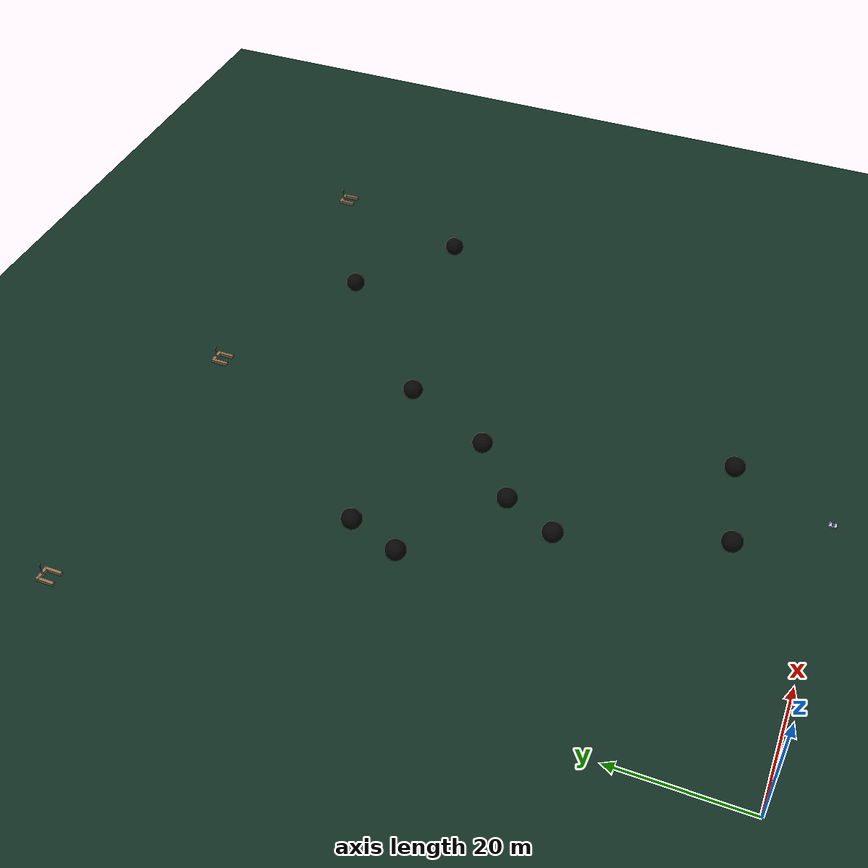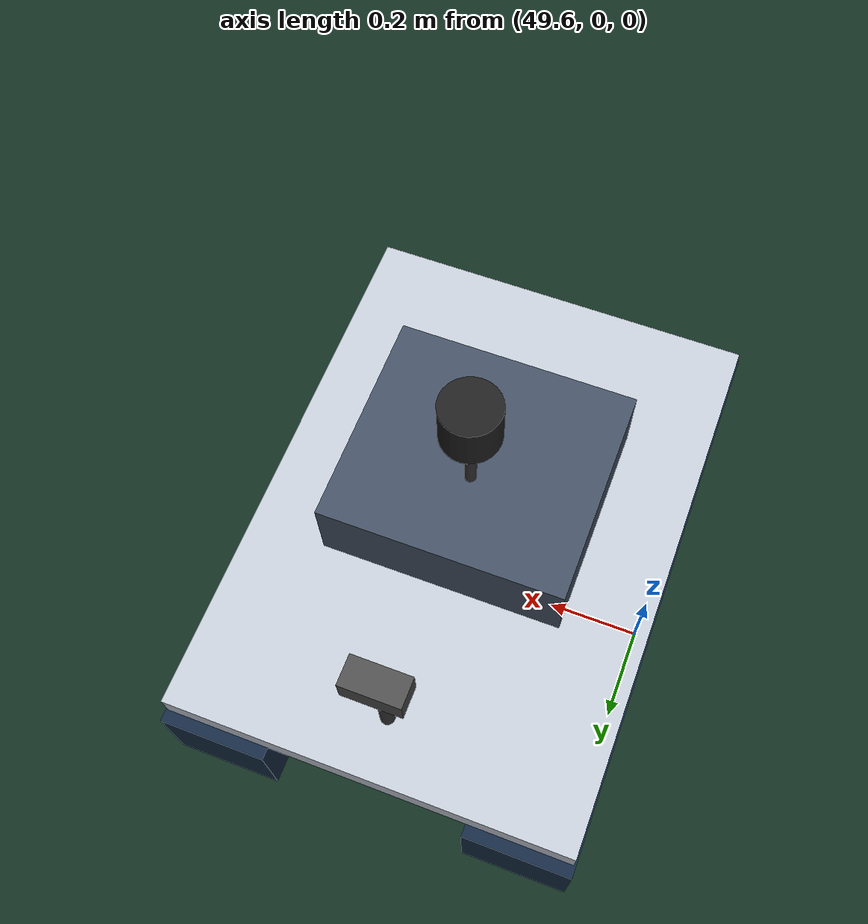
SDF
<sdf version="1.9">
 <world name="plan_world">
  <physics name="4ms" type="dart">
   <max_step_size>0.004</max_step_size>
   <real_time_factor>1.0</real_time_factor>
  </physics>
  <plugin filename="gz-sim-physics-system" name="gz::sim::systems::Physics"/>
  <plugin filename="gz-sim-user-commands-system" name="gz::sim::systems::UserCommands"/>
  <plugin filename="gz-sim-sensors-system" name="gz::sim::systems::Sensors">
   <render_engine>ogre2</render_engine>
   <disable_on_drained_battery>true</disable_on_drained_battery>
  </plugin>
  <plugin filename="gz-sim-imu-system" name="gz::sim::systems::Imu"/>
  <plugin filename="gz-sim-magnetometer-system" name="gz::sim::systems::Magnetometer"/>
  <plugin filename="gz-sim-forcetorque-system" name="gz::sim::systems::ForceTorque"/>
  <plugin filename="gz-sim-particle-emitter2-system" name="gz::sim::systems::ParticleEmitter2"/>
  <plugin filename="gz-sim-scene-broadcaster-system" name="gz::sim::systems::SceneBroadcaster"/>
  <plugin filename="gz-sim-contact-system" name="gz::sim::systems::Contact"/>
  <plugin filename="gz-sim-navsat-system" name="gz::sim::systems::NavSat"/>
  <scene><grid>false</grid><ambient>1.0 1.0 1.0</ambient><background>0.8 0.8 0.8</background></scene>
  <spherical_coordinates>
   <surface_model>EARTH_WGS84</surface_model>
   <world_frame_orientation>ENU</world_frame_orientation>
   <latitude_deg>-33.724223</latitude_deg>
   <longitude_deg>150.679736</longitude_deg>
   <elevation>0.0</elevation>
   <heading_deg>0.0</heading_deg>
  </spherical_coordinates>
  <light type="directional" name="sun">
   <pose>0 0 10 0 0 0</pose>
   <diffuse>0.8 0.8 0.8 1</diffuse>
   <specular>0.2 0.2 0.2 1</specular>
   <attenuation>
    <range>1000</range>
    <constant>0.9</constant>
    <linear>0.01</linear>
    <quadratic>0.001</quadratic>
   </attenuation>
   <direction>-0.5 0.1 -0.9</direction>
  </light>
  <plugin filename="libPublisherPlugin.so" name="vrx::PublisherPlugin">
   <message type="gz.msgs.Param" topic="/vrx/wavefield/parameters" every="2.0">params {
          key: "direction"
          value {
            type: DOUBLE
            double_value: 0.0
          }
        }
        params {
          key: "gain"
          value {
            type: DOUBLE
            double_value: 0.3
          }
        }
        params {
          key: "period"
          value {
            type: DOUBLE
            double_value: 5
          }
        }
        params {
          key: "steepness"
          value {
            type: DOUBLE
            double_value: 0
          }
        }</message>
  </plugin>
  <model name="seabed">
   <static>true</static>
   <pose>50 50 -3 0 0 0</pose>
   <link name="bed">
    <collision name="bed_collision"><geometry><box><size>400 400 1</size></box></geometry></collision>
    <visual name="bed_visual">
     <geometry><box><size>400 400 1</size></box></geometry>
     <material><ambient>0.05 0.14 0.11 1</ambient><diffuse>0.07 0.18 0.13 1</diffuse></material>
    </visual>
   </link>
  </model>
  <include><uri>model://boat_real</uri><name>wamv</name><pose>50 0 0.15 0 0 1.5707963267948966</pose></include>
  <include><uri>model://port_berth</uri><name>port_0</name><pose>0 100 0 0 0 3.141592653589793</pose></include>
  <include><uri>model://port_berth</uri><name>port_1</name><pose>50 100 0 0 0 3.141592653589793</pose></include>
  <include>
   <uri>model://port_berth</uri>
   <name>port_2</name>
   <pose>100 100 0 0 0 3.141592653589793</pose>
  </include>
  <model name="beacon_port_0">
   <static>true</static>
   <pose>0.0 101.25 0.5 0 0 0</pose>
   <link name="beacon">
    <visual name="base">
     <geometry><box><size>0.30 0.50 0.06</size></box></geometry>
     <material><ambient>0.25 0.22 0.20 1</ambient><diffuse>0.35 0.32 0.30 1</diffuse></material>
    </visual>
    <visual name="pole">
     <pose>0 0 0.8 0 0 0</pose>
     <geometry><cylinder><radius>0.05</radius><length>1.6</length></cylinder></geometry>
     <material><ambient>0.35 0.30 0.25 1</ambient><diffuse>0.45 0.40 0.35 1</diffuse></material>
    </visual>
    <visual name="lamp">
     <pose>0 0 1.65 0 0 0</pose>
     <geometry><box><size>0.45 0.08 0.30</size></box></geometry>
     <material>
      <ambient>0.03 0.03 0.03 1</ambient>
      <diffuse>0.03 0.03 0.03 1</diffuse>
      <specular>0.1 0.1 0.1 1</specular>
     </material>
     <plugin name="vrx::LightBuoyPlugin" filename="libLightBuoyPlugin.so">
      <color_1>red</color_1>
      <color_2>red</color_2>
      <color_3>red</color_3>
      <visuals><visual>beacon_port_0::beacon::lamp</visual></visuals>
     </plugin>
    </visual>
   </link>
  </model>
  <model name="beacon_port_1">
   <static>true</static>
   <pose>50.0 101.25 0.5 0 0 0</pose>
   <link name="beacon">
    <visual name="base">
     <geometry><box><size>0.30 0.50 0.06</size></box></geometry>
     <material><ambient>0.25 0.22 0.20 1</ambient><diffuse>0.35 0.32 0.30 1</diffuse></material>
    </visual>
    <visual name="pole">
     <pose>0 0 0.8 0 0 0</pose>
     <geometry><cylinder><radius>0.05</radius><length>1.6</length></cylinder></geometry>
     <material><ambient>0.35 0.30 0.25 1</ambient><diffuse>0.45 0.40 0.35 1</diffuse></material>
    </visual>
    <visual name="lamp">
     <pose>0 0 1.65 0 0 0</pose>
     <geometry><box><size>0.45 0.08 0.30</size></box></geometry>
     <material>
      <ambient>0.03 0.03 0.03 1</ambient>
      <diffuse>0.03 0.03 0.03 1</diffuse>
      <specular>0.1 0.1 0.1 1</specular>
     </material>
     <plugin name="vrx::LightBuoyPlugin" filename="libLightBuoyPlugin.so">
      <color_1>red</color_1>
      <color_2>red</color_2>
      <color_3>red</color_3>
      <visuals><visual>beacon_port_1::beacon::lamp</visual></visuals>
     </plugin>
    </visual>
   </link>
  </model>
  <model name="beacon_port_2">
   <static>true</static>
   <pose>100.0 101.25 0.5 0 0 0</pose>
   <link name="beacon">
    <visual name="base">
     <geometry><box><size>0.30 0.50 0.06</size></box></geometry>
     <material><ambient>0.25 0.22 0.20 1</ambient><diffuse>0.35 0.32 0.30 1</diffuse></material>
    </visual>
    <visual name="pole">
     <pose>0 0 0.8 0 0 0</pose>
     <geometry><cylinder><radius>0.05</radius><length>1.6</length></cylinder></geometry>
     <material><ambient>0.35 0.30 0.25 1</ambient><diffuse>0.45 0.40 0.35 1</diffuse></material>
    </visual>
    <visual name="lamp">
     <pose>0 0 1.65 0 0 0</pose>
     <geometry><box><size>0.45 0.08 0.30</size></box></geometry>
     <material>
      <ambient>0.03 0.03 0.03 1</ambient>
      <diffuse>0.03 0.03 0.03 1</diffuse>
      <specular>0.1 0.1 0.1 1</specular>
     </material>
     <plugin name="vrx::LightBuoyPlugin" filename="libLightBuoyPlugin.so">
      <color_1>green</color_1>
      <color_2>green</color_2>
      <color_3>green</color_3>
      <visuals><visual>beacon_port_2::beacon::lamp</visual></visuals>
     </plugin>
    </visual>
   </link>
  </model>
  <model name="obstacle_0">
   <static>true</static>
   <pose>47.486 53.313 0.000 0 0 1.7253</pose>
   <link name="obstacle">
    <collision name="collision"><geometry><sphere><radius>1.6000</radius></sphere></geometry></collision>
    <visual name="visual">
     <geometry><sphere><radius>1.6000</radius></sphere></geometry>
     <material>
      <ambient>0.020 0.020 0.020 1.0</ambient>
      <diffuse>0.020 0.020 0.020 1.0</diffuse>
      <specular>0.15 0.15 0.15 1</specular>
     </material>
    </visual>
   </link>
  </model>
  <model name="obstacle_1">
   <static>true</static>
   <pose>77.297 88.449 0.000 0 0 1.1730</pose>
   <link name="obstacle">
    <collision name="collision"><geometry><sphere><radius>1.6000</radius></sphere></geometry></collision>
    <visual name="visual">
     <geometry><sphere><radius>1.6000</radius></sphere></geometry>
     <material>
      <ambient>0.020 0.020 0.020 1.0</ambient>
      <diffuse>0.020 0.020 0.020 1.0</diffuse>
      <specular>0.15 0.15 0.15 1</specular>
     </material>
    </visual>
   </link>
  </model>
  <model name="obstacle_2">
   <static>true</static>
   <pose>93.773 76.048 0.000 0 0 5.3534</pose>
   <link name="obstacle">
    <collision name="collision"><geometry><sphere><radius>1.6000</radius></sphere></geometry></collision>
    <visual name="visual">
     <geometry><sphere><radius>1.6000</radius></sphere></geometry>
     <material>
      <ambient>0.020 0.020 0.020 1.0</ambient>
      <diffuse>0.020 0.020 0.020 1.0</diffuse>
      <specular>0.15 0.15 0.15 1</specular>
     </material>
    </visual>
   </link>
  </model>
  <model name="obstacle_3">
   <static>true</static>
   <pose>54.876 68.068 0.000 0 0 2.1626</pose>
   <link name="obstacle">
    <collision name="collision"><geometry><sphere><radius>1.6000</radius></sphere></geometry></collision>
    <visual name="visual">
     <geometry><sphere><radius>1.6000</radius></sphere></geometry>
     <material>
      <ambient>0.020 0.020 0.020 1.0</ambient>
      <diffuse>0.020 0.020 0.020 1.0</diffuse>
      <specular>0.15 0.15 0.15 1</specular>
     </material>
    </visual>
   </link>
  </model>
  <model name="obstacle_4">
   <static>true</static>
   <pose>41.760 12.934 0.000 0 0 5.4804</pose>
   <link name="obstacle">
    <collision name="collision"><geometry><sphere><radius>1.6000</radius></sphere></geometry></collision>
    <visual name="visual">
     <geometry><sphere><radius>1.6000</radius></sphere></geometry>
     <material>
      <ambient>0.020 0.020 0.020 1.0</ambient>
      <diffuse>0.020 0.020 0.020 1.0</diffuse>
      <specular>0.15 0.15 0.15 1</specular>
     </material>
    </visual>
   </link>
  </model>
  <model name="obstacle_5">
   <static>true</static>
   <pose>22.501 57.231 0.000 0 0 5.6210</pose>
   <link name="obstacle">
    <collision name="collision"><geometry><sphere><radius>1.6000</radius></sphere></geometry></collision>
    <visual name="visual">
     <geometry><sphere><radius>1.6000</radius></sphere></geometry>
     <material>
      <ambient>0.020 0.020 0.020 1.0</ambient>
      <diffuse>0.020 0.020 0.020 1.0</diffuse>
      <specular>0.15 0.15 0.15 1</specular>
     </material>
    </visual>
   </link>
  </model>
  <model name="obstacle_6">
   <static>true</static>
   <pose>25.625 65.552 0.000 0 0 6.2473</pose>
   <link name="obstacle">
    <collision name="collision"><geometry><sphere><radius>1.6000</radius></sphere></geometry></collision>
    <visual name="visual">
     <geometry><sphere><radius>1.6000</radius></sphere></geometry>
     <material>
      <ambient>0.020 0.020 0.020 1.0</ambient>
      <diffuse>0.020 0.020 0.020 1.0</diffuse>
      <specular>0.15 0.15 0.15 1</specular>
     </material>
    </visual>
   </link>
  </model>
  <model name="obstacle_7">
   <static>true</static>
   <pose>56.777 15.852 0.000 0 0 3.4244</pose>
   <link name="obstacle">
    <collision name="collision"><geometry><sphere><radius>1.6000</radius></sphere></geometry></collision>
    <visual name="visual">
     <geometry><sphere><radius>1.6000</radius></sphere></geometry>
     <material>
      <ambient>0.020 0.020 0.020 1.0</ambient>
      <diffuse>0.020 0.020 0.020 1.0</diffuse>
      <specular>0.15 0.15 0.15 1</specular>
     </material>
    </visual>
   </link>
  </model>
  <model name="obstacle_8">
   <static>true</static>
   <pose>33.954 37.462 0.000 0 0 2.8290</pose>
   <link name="obstacle">
    <collision name="collision"><geometry><sphere><radius>1.6000</radius></sphere></geometry></collision>
    <visual name="visual">
     <geometry><sphere><radius>1.6000</radius></sphere></geometry>
     <material>
      <ambient>0.020 0.020 0.020 1.0</ambient>
      <diffuse>0.020 0.020 0.020 1.0</diffuse>
      <specular>0.15 0.15 0.15 1</specular>
     </material>
    </visual>
   </link>
  </model>
  <model name="obstacle_9">
   <static>true</static>
   <pose>37.920 45.861 0.000 0 0 6.0737</pose>
   <link name="obstacle">
    <collision name="collision"><geometry><sphere><radius>1.6000</radius></sphere></geometry></collision>
    <visual name="visual">
     <geometry><sphere><radius>1.6000</radius></sphere></geometry>
     <material>
      <ambient>0.020 0.020 0.020 1.0</ambient>
      <diffuse>0.020 0.020 0.020 1.0</diffuse>
      <specular>0.15 0.15 0.15 1</specular>
     </material>
    </visual>
   </link>
  </model>
 </world>
</sdf>

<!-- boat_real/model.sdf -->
<sdf version="1.9">
  <model name="boat_real">
    <link name='wamv/base_link'>
      <inertial>
        <!-- COM slightly below the waterline plane for roll/pitch stability -->
        <pose>0 0 -0.04 0 0 0</pose>
        <mass>15</mass>
        <inertia>
          <ixx>1.10</ixx>
          <ixy>0</ixy>
          <ixz>0</ixz>
          <iyy>2.00</iyy>
          <iyz>0</iyz>
          <izz>2.70</izz>
        </inertia>
      </inertial>

      <!-- ==================== collisions ==================== -->
      <!-- Left demi-hull: box spans x[-0.6,0.6], y[-0.425,-0.205], z[-0.065,0.135] -->
      <collision name="left_hull_collision">
        <pose>0 -0.315 0.035 0 0 0</pose>
        <geometry>
          <box>
            <size>1.2 0.22 0.20</size>
          </box>
        </geometry>
        <surface>
          <friction>
            <ode>
              <mu>0.1</mu>
              <mu2>0.1</mu2>
            </ode>
          </friction>
        </surface>
      </collision>
      <!-- Right demi-hull -->
      <collision name="right_hull_collision">
        <pose>0 0.315 0.035 0 0 0</pose>
        <geometry>
          <box>
            <size>1.2 0.22 0.20</size>
          </box>
        </geometry>
        <surface>
          <friction>
            <ode>
              <mu>0.1</mu>
              <mu2>0.1</mu2>
            </ode>
          </friction>
        </surface>
      </collision>

      <!-- ==================== visuals ==================== -->
      <visual name="left_hull_visual">
        <pose>0 -0.315 0.035 0 0 0</pose>
        <geometry>
          <box>
            <size>1.2 0.22 0.20</size>
          </box>
        </geometry>
        <material>
          <ambient>0.05 0.10 0.16 1</ambient>
          <diffuse>0.08 0.16 0.26 1</diffuse>
          <specular>0.2 0.2 0.2 1</specular>
        </material>
      </visual>
      <visual name="right_hull_visual">
        <pose>0 0.315 0.035 0 0 0</pose>
        <geometry>
          <box>
            <size>1.2 0.22 0.20</size>
          </box>
        </geometry>
        <material>
          <ambient>0.05 0.10 0.16 1</ambient>
          <diffuse>0.08 0.16 0.26 1</diffuse>
          <specular>0.2 0.2 0.2 1</specular>
        </material>
      </visual>

      <!-- Deck (visual only): spans both hulls, z[0.135,0.195] -->
      <visual name="deck_visual">
        <pose>0 0 0.165 0 0 0</pose>
        <geometry>
          <box>
            <size>1.15 0.84 0.06</size>
          </box>
        </geometry>
        <material>
          <ambient>0.55 0.58 0.62 1</ambient>
          <diffuse>0.75 0.78 0.82 1</diffuse>
          <specular>0.1 0.1 0.1 1</specular>
        </material>
      </visual>

      <!-- Small cabin / electronics box (visual only) -->
      <visual name="cabin_visual">
        <pose>-0.05 0 0.30 0 0 0</pose>
        <geometry>
          <box>
            <size>0.45 0.50 0.16</size>
          </box>
        </geometry>
        <material>
          <ambient>0.18 0.22 0.28 1</ambient>
          <diffuse>0.26 0.31 0.38 1</diffuse>
          <specular>0.1 0.1 0.1 1</specular>
        </material>
      </visual>

      <!-- ==================== sensors ==================== -->
      <sensor name="imu_sensor" type="imu">
        <always_on>true</always_on>
        <update_rate>50</update_rate>
        <imu>
          <angular_velocity>
            <x><noise type="gaussian"><mean>0</mean><stddev>0.0002</stddev></noise></x>
            <y><noise type="gaussian"><mean>0</mean><stddev>0.0002</stddev></noise></y>
            <z><noise type="gaussian"><mean>0</mean><stddev>0.0002</stddev></noise></z>
          </angular_velocity>
          <linear_acceleration>
            <x><noise type="gaussian"><mean>0</mean><stddev>0.017</stddev></noise></x>
            <y><noise type="gaussian"><mean>0</mean><stddev>0.017</stddev></noise></y>
            <z><noise type="gaussian"><mean>0</mean><stddev>0.017</stddev></noise></z>
          </linear_acceleration>
        </imu>
      </sensor>

      <!-- Front RGB camera (perception test rig; same sensor params as
           the old WAM-V cameras: 1280x720 R8G8B8, HFOV ~80 deg, pitched
           slightly downward so the water/beacons stay in view). -->
      <sensor name='front_camera_sensor' type='camera'>
        <always_on>true</always_on>
        <update_rate>30</update_rate>
        <camera name='front_camera'>
          <horizontal_fov>1.3962634</horizontal_fov>
          <image>
            <width>1280</width>
            <height>720</height>
            <format>R8G8B8</format>
          </image>
          <clip>
            <near>0.05</near>
            <far>400</far>
          </clip>
          <noise>
            <type>gaussian</type>
            <mean>0</mean>
            <stddev>0.007</stddev>
          </noise>
        </camera>
        <pose>0.50 0 0.44 0 0.2618 0</pose>
      </sensor>
      <!-- camera mast + housing (visual only) -->
      <visual name="cam_mast_visual">
        <pose>0.45 0 0.30 0 0 0</pose>
        <geometry>
          <cylinder>
            <radius>0.015</radius>
            <length>0.30</length>
          </cylinder>
        </geometry>
        <material>
          <ambient>0.1 0.1 0.1 1</ambient>
          <diffuse>0.2 0.2 0.2 1</diffuse>
        </material>
      </visual>
      <visual name="cam_housing_visual">
        <pose>0.46 0 0.44 0 0 0</pose>
        <geometry>
          <box>
            <size>0.06 0.12 0.06</size>
          </box>
        </geometry>
        <material>
          <ambient>0.15 0.15 0.15 1</ambient>
          <diffuse>0.3 0.3 0.3 1</diffuse>
        </material>
      </visual>

      <sensor name='lidar_sensor' type='gpu_ray'>
        <always_on>true</always_on>
        <visualize>true</visualize>
        <update_rate>10</update_rate>
        <ray>
          <scan>
            <horizontal>
              <samples>1875</samples>
              <resolution>1</resolution>
              <min_angle>-3.1415926535897931</min_angle>
              <max_angle>3.1415926535897931</max_angle>
            </horizontal>
            <vertical>
              <samples>16</samples>
              <resolution>1</resolution>
              <min_angle>-0.26179938779914941</min_angle>
              <max_angle>0.26179938779914941</max_angle>
            </vertical>
          </scan>
          <range>
            <min>0.1</min>
            <max>130</max>
          </range>
          <noise>
            <type>gaussian</type>
            <mean>0</mean>
            <stddev>0.01</stddev>
          </noise>
        </ray>
        <pose>0 0 0.60 0 0 0</pose>
      </sensor>
      <visual name="lidar_mast_visual">
        <pose>0 0 0.48 0 0 0</pose>
        <geometry>
          <cylinder>
            <radius>0.012</radius>
            <length>0.26</length>
          </cylinder>
        </geometry>
        <material>
          <ambient>0.1 0.1 0.1 1</ambient>
          <diffuse>0.2 0.2 0.2 1</diffuse>
        </material>
      </visual>
      <visual name="lidar_housing_visual">
        <pose>0 0 0.60 0 0 0</pose>
        <geometry>
          <cylinder>
            <radius>0.06</radius>
            <length>0.10</length>
          </cylinder>
        </geometry>
        <material>
          <ambient>0.05 0.05 0.05 1</ambient>
          <diffuse>0.12 0.12 0.12 1</diffuse>
        </material>
      </visual>
    </link>

    <joint name='wamv/left_propeller_joint' type='revolute'>
      <pose relative_to='wamv/base_link'>-0.56 -0.315 -0.02 0 0 0</pose>
      <parent>wamv/base_link</parent>
      <child>wamv/left_propeller_link</child>
      <axis>
        <xyz>1 0 0</xyz>
        <limit>
          <lower>-inf</lower>
          <upper>inf</upper>
          <effort>10</effort>
          <velocity>100</velocity>
        </limit>
        <dynamics>
          <damping>0.05</damping>
          <friction>0.05</friction>
          <spring_reference>0</spring_reference>
          <spring_stiffness>0</spring_stiffness>
        </dynamics>
      </axis>
    </joint>
    <link name='wamv/left_propeller_link'>
      <inertial>
        <pose>0 0 0 0 0 0</pose>
        <mass>0.2</mass>
        <inertia>
          <ixx>0.0004</ixx>
          <ixy>0</ixy>
          <ixz>0</ixz>
          <iyy>0.0004</iyy>
          <iyz>0</iyz>
          <izz>0.0004</izz>
        </inertia>
      </inertial>
      <collision name="left_prop_collision">
        <pose>0 0 0 0 1.5707963267948966 0</pose>
        <geometry>
          <cylinder>
            <length>0.06</length>
            <radius>0.07</radius>
          </cylinder>
        </geometry>
      </collision>
      <visual name="left_prop_visual">
        <pose>0 0 0 0 1.5707963267948966 0</pose>
        <geometry>
          <cylinder>
            <length>0.06</length>
            <radius>0.07</radius>
          </cylinder>
        </geometry>
        <material>
          <ambient>0.25 0.25 0.25 1</ambient>
          <diffuse>0.35 0.35 0.35 1</diffuse>
        </material>
      </visual>
    </link>

    <!-- ============================================================
         Right thruster (mirrored)
         ============================================================ -->
    <joint name='wamv/right_propeller_joint' type='revolute'>
      <pose relative_to='wamv/base_link'>-0.56 0.315 -0.02 0 0 0</pose>
      <parent>wamv/base_link</parent>
      <child>wamv/right_propeller_link</child>
      <axis>
        <xyz>1 0 0</xyz>
        <limit>
          <lower>-inf</lower>
          <upper>inf</upper>
          <effort>10</effort>
          <velocity>100</velocity>
        </limit>
        <dynamics>
          <damping>0.05</damping>
          <friction>0.05</friction>
          <spring_reference>0</spring_reference>
          <spring_stiffness>0</spring_stiffness>
        </dynamics>
      </axis>
    </joint>
    <link name='wamv/right_propeller_link'>
      <inertial>
        <pose>0 0 0 0 0 0</pose>
        <mass>0.2</mass>
        <inertia>
          <ixx>0.0004</ixx>
          <ixy>0</ixy>
          <ixz>0</ixz>
          <iyy>0.0004</iyy>
          <iyz>0</iyz>
          <izz>0.0004</izz>
        </inertia>
      </inertial>
      <collision name="right_prop_collision">
        <pose>0 0 0 0 1.5707963267948966 0</pose>
        <geometry>
          <cylinder>
            <length>0.06</length>
            <radius>0.07</radius>
          </cylinder>
        </geometry>
      </collision>
      <visual name="right_prop_visual">
        <pose>0 0 0 0 1.5707963267948966 0</pose>
        <geometry>
          <cylinder>
            <length>0.06</length>
            <radius>0.07</radius>
          </cylinder>
        </geometry>
        <material>
          <ambient>0.25 0.25 0.25 1</ambient>
          <diffuse>0.35 0.35 0.35 1</diffuse>
        </material>
      </visual>
    </link>

    <plugin name='vrx::Surface' filename='libSurface.so'>
      <link_name>wamv/base_link</link_name>
      <hull_length>1.15</hull_length>
      <hull_radius>0.12</hull_radius>
      <fluid_level>0.1</fluid_level>
      <points>
        <point>0.7 -0.315 0.03</point>
        <point>-0.5 -0.315 0.03</point>
      </points>
      <wavefield>
        <topic>/vrx/wavefield/parameters</topic>
      </wavefield>
    </plugin>
    <plugin name='vrx::Surface' filename='libSurface.so'>
      <link_name>wamv/base_link</link_name>
      <hull_length>1.15</hull_length>
      <hull_radius>0.12</hull_radius>
      <fluid_level>0.1</fluid_level>
      <points>
        <point>0.7 0.315 0.03</point>
        <point>-0.5 0.315 0.03</point>
      </points>
      <wavefield>
        <topic>/vrx/wavefield/parameters</topic>
      </wavefield>
    </plugin>
    <plugin name='vrx::SimpleHydrodynamics' filename='libSimpleHydrodynamics.so'>
      <link_name>wamv/base_link</link_name>
      <xDotU>0.0</xDotU>
      <yDotV>0.0</yDotV>
      <nDotR>0.0</nDotR>
      <xU>5.0</xU>
      <xUU>8.0</xUU>
      <yV>5.0</yV>
      <yVV>5.0</yVV>
      <zW>30.0</zW>
      <kP>20.0</kP>
      <kPP>30.0</kPP>
      <mQ>40.0</mQ>
      <mQQ>40.0</mQQ>
      <nR>10.0</nR>
      <nRR>12.0</nRR>
    </plugin>
    <plugin name='gz::sim::systems::Thruster' filename='gz-sim-thruster-system'>
      <joint_name>wamv/left_propeller_joint</joint_name>
      <thrust_coefficient>0.004</thrust_coefficient>
      <fluid_density>1000</fluid_density>
      <propeller_diameter>0.12</propeller_diameter>
      <velocity_control>true</velocity_control>
      <max_thrust_cmd>120.0</max_thrust_cmd>
      <namespace>wamv</namespace>
      <topic>thrusters/left/thrust</topic>
      <name>left</name>
    </plugin>
    <plugin name='gz::sim::systems::Thruster' filename='gz-sim-thruster-system'>
      <joint_name>wamv/right_propeller_joint</joint_name>
      <thrust_coefficient>0.004</thrust_coefficient>
      <fluid_density>1000</fluid_density>
      <propeller_diameter>0.12</propeller_diameter>
      <velocity_control>true</velocity_control>
      <max_thrust_cmd>120.0</max_thrust_cmd>
      <namespace>wamv</namespace>
      <topic>thrusters/right/thrust</topic>
      <name>right</name>
    </plugin>
  </model>
</sdf>

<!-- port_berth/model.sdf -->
<sdf version="1.9">
  <model name="port_berth">
    <static>true</static>
    <self_collide>false</self_collide>

    <link name="dock">
      <!-- 后墙: y∈[101.0,101.5] (世界) -->
      <collision name="back_wall_collision">
        <pose>0 -1.25 0.25 0 0 0</pose>
        <geometry><box><size>2.5 0.5 0.5</size></box></geometry>
        <surface><friction><ode><mu>0.25</mu><mu2>0.25</mu2></ode></friction></surface>
      </collision>
      <visual name="back_wall_visual">
        <pose>0 -1.25 0.25 0 0 0</pose>
        <geometry><box><size>2.5 0.5 0.5</size></box></geometry>
        <material>
          <ambient>0.35 0.28 0.20 1</ambient>
          <diffuse>0.55 0.45 0.33 1</diffuse>
          <specular>0.1 0.1 0.1 1</specular>
        </material>
      </visual>

      <!-- 左墙: x∈[-1.25,-0.75] -->
      <collision name="left_wall_collision">
        <pose>-1.0 0 0.25 0 0 0</pose>
        <geometry><box><size>0.5 2.5 0.5</size></box></geometry>
        <surface><friction><ode><mu>0.25</mu><mu2>0.25</mu2></ode></friction></surface>
      </collision>
      <visual name="left_wall_visual">
        <pose>-1.0 0 0.25 0 0 0</pose>
        <geometry><box><size>0.5 2.5 0.5</size></box></geometry>
        <material>
          <ambient>0.35 0.28 0.20 1</ambient>
          <diffuse>0.55 0.45 0.33 1</diffuse>
          <specular>0.1 0.1 0.1 1</specular>
        </material>
      </visual>

      <!-- 右墙: x∈[+0.75,+1.25] -->
      <collision name="right_wall_collision">
        <pose>1.0 0 0.25 0 0 0</pose>
        <geometry><box><size>0.5 2.5 0.5</size></box></geometry>
        <surface><friction><ode><mu>0.25</mu><mu2>0.25</mu2></ode></friction></surface>
      </collision>
      <visual name="right_wall_visual">
        <pose>1.0 0 0.25 0 0 0</pose>
        <geometry><box><size>0.5 2.5 0.5</size></box></geometry>
        <material>
          <ambient>0.35 0.28 0.20 1</ambient>
          <diffuse>0.55 0.45 0.33 1</diffuse>
          <specular>0.1 0.1 0.1 1</specular>
        </material>
      </visual>
    </link>
  </model>
</sdf>
